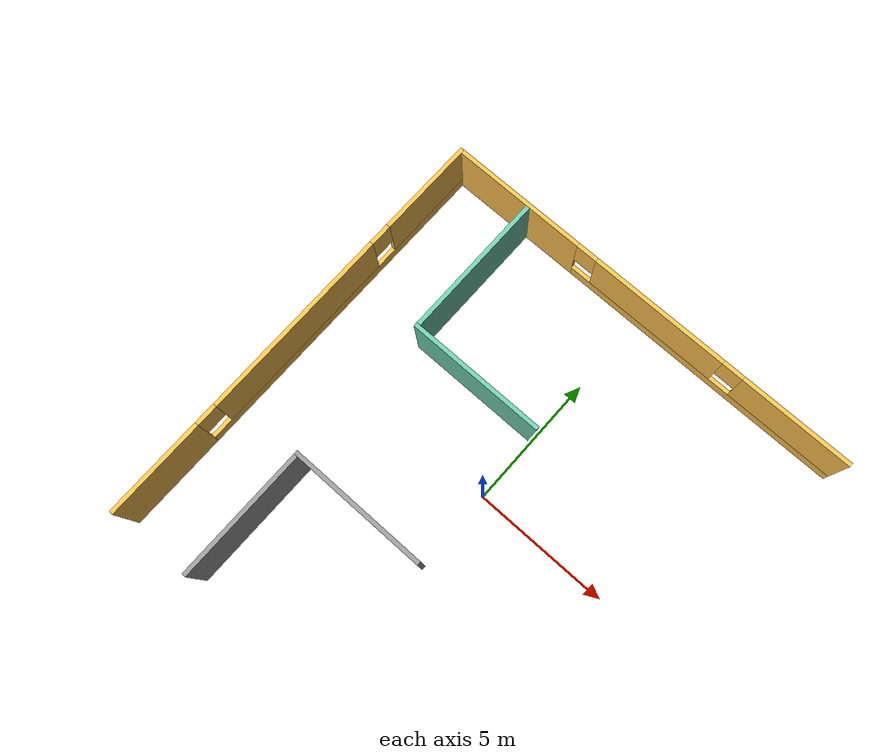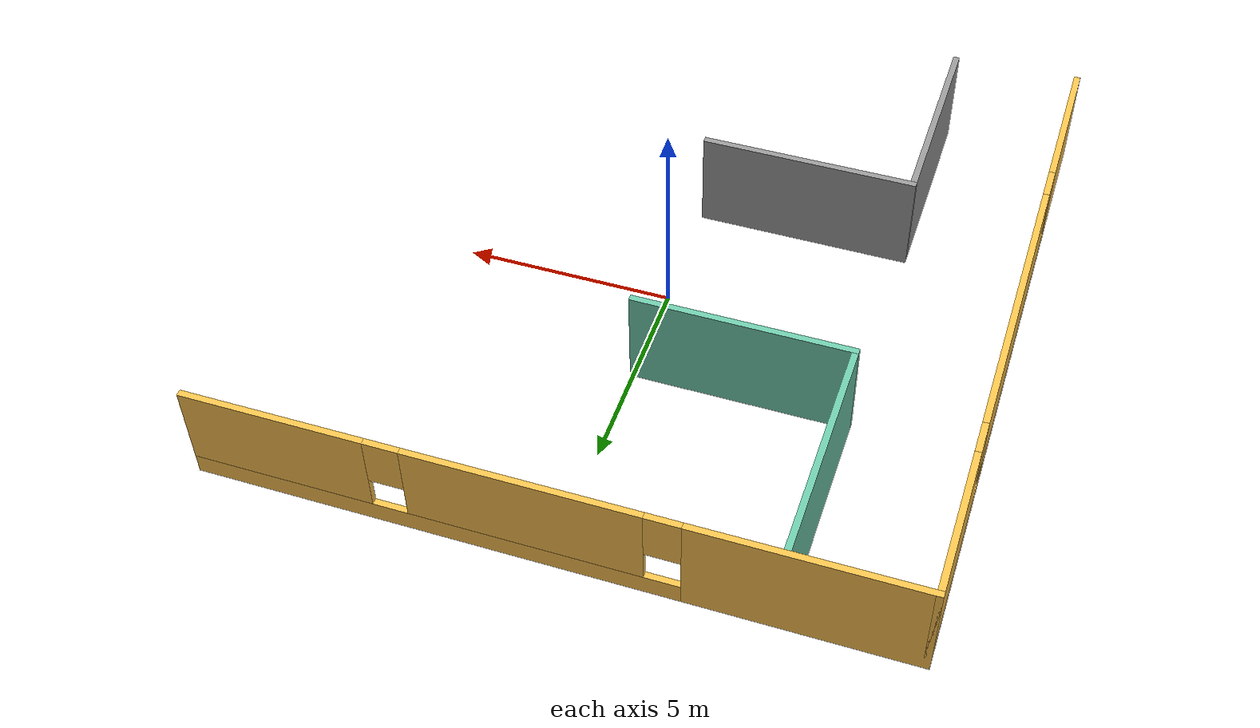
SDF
<sdf version="1.7">
 <model name="basic_office">
  <link name="Wall_15">
   <pose>0 8 0 0 -0 0</pose>
   <visual name="Wall_15_Visual_2">
    <pose>0.5 0 1.5 0 -0 0</pose>
    <geometry><box><size>5.2 0.15 2</size></box></geometry>
    <material>
     <script><uri>file://media/materials/scripts/gazebo.material</uri><name>Gazebo/Grey</name></script>
     <ambient>1 0.764706 0.305882 1</ambient>
     <shader type="pixel"/>
    </material>
    <meta><layer>0</layer></meta>
   </visual>
   <visual name="Wall_15_Visual_4">
    <pose>-2.5 0 1.9 0 -0 0</pose>
    <geometry><box><size>0.8 0.15 1.2</size></box></geometry>
    <material>
     <script><uri>file://media/materials/scripts/gazebo.material</uri><name>Gazebo/Grey</name></script>
     <ambient>1 0.764706 0.305882 1</ambient>
     <shader type="pixel"/>
    </material>
    <meta><layer>0</layer></meta>
   </visual>
   <visual name="Wall_15_Visual_5">
    <pose>3.5 0 1.9 0 -0 0</pose>
    <geometry><box><size>0.8 0.15 1.2</size></box></geometry>
    <material>
     <script><uri>file://media/materials/scripts/gazebo.material</uri><name>Gazebo/Grey</name></script>
     <ambient>1 0.764706 0.305882 1</ambient>
     <shader type="pixel"/>
    </material>
    <meta><layer>0</layer></meta>
   </visual>
   <visual name="Wall_15_Visual_3">
    <pose>5.9875 0 1.5 0 -0 0</pose>
    <geometry><box><size>4.175 0.15 2</size></box></geometry>
    <material>
     <script><uri>file://media/materials/scripts/gazebo.material</uri><name>Gazebo/Grey</name></script>
     <ambient>1 0.764706 0.305882 1</ambient>
     <shader type="pixel"/>
    </material>
    <meta><layer>0</layer></meta>
   </visual>
   <visual name="Wall_15_Visual_1">
    <pose>2.5875 0 0.25 0 -0 0</pose>
    <geometry><box><size>10.975 0.15 0.5</size></box></geometry>
    <material>
     <script><uri>file://media/materials/scripts/gazebo.material</uri><name>Gazebo/Grey</name></script>
     <ambient>1 0.764706 0.305882 1</ambient>
     <shader type="pixel"/>
    </material>
    <meta><layer>0</layer></meta>
   </visual>
   <visual name="Wall_15_Visual_0">
    <pose>-5.4875 0 1.25 0 -0 0</pose>
    <geometry><box><size>5.175 0.15 2.5</size></box></geometry>
    <material>
     <script><uri>file://media/materials/scripts/gazebo.material</uri><name>Gazebo/Grey</name></script>
     <ambient>1 0.764706 0.305882 1</ambient>
     <shader type="pixel"/>
    </material>
    <meta><layer>0</layer></meta>
   </visual>
   <collision name="Wall_15_Collision_0">
    <pose>-5.4875 0 1.25 0 -0 0</pose>
    <geometry><box><size>5.175 0.15 2.5</size></box></geometry>
    <surface>
     <friction>
      <ode><mu>1</mu><mu2>1</mu2><fdir1>0 0 0</fdir1><slip1>0</slip1><slip2>0</slip2></ode>
      <torsional>
       <coefficient>1</coefficient>
       <patch_radius>0</patch_radius>
       <surface_radius>0</surface_radius>
       <use_patch_radius>1</use_patch_radius>
       <ode><slip>0</slip></ode>
      </torsional>
     </friction>
     <bounce><restitution_coefficient>0</restitution_coefficient><threshold>1e+06</threshold></bounce>
     <contact>
      <collide_without_contact>0</collide_without_contact>
      <collide_without_contact_bitmask>1</collide_without_contact_bitmask>
      <collide_bitmask>1</collide_bitmask>
      <ode>
       <soft_cfm>0</soft_cfm>
       <soft_erp>0.2</soft_erp>
       <kp>1e+13</kp>
       <kd>1</kd>
       <max_vel>0.01</max_vel>
       <min_depth>0</min_depth>
      </ode>
      <bullet>
       <split_impulse>1</split_impulse>
       <split_impulse_penetration_threshold>-0.01</split_impulse_penetration_threshold>
       <soft_cfm>0</soft_cfm>
       <soft_erp>0.2</soft_erp>
       <kp>1e+13</kp>
       <kd>1</kd>
      </bullet>
     </contact>
    </surface>
   </collision>
   <collision name="Wall_15_Collision_5">
    <pose>3.5 0 1.9 0 -0 0</pose>
    <geometry><box><size>0.8 0.15 1.2</size></box></geometry>
    <surface>
     <friction>
      <ode><mu>1</mu><mu2>1</mu2><fdir1>0 0 0</fdir1><slip1>0</slip1><slip2>0</slip2></ode>
      <torsional>
       <coefficient>1</coefficient>
       <patch_radius>0</patch_radius>
       <surface_radius>0</surface_radius>
       <use_patch_radius>1</use_patch_radius>
       <ode><slip>0</slip></ode>
      </torsional>
     </friction>
     <bounce><restitution_coefficient>0</restitution_coefficient><threshold>1e+06</threshold></bounce>
     <contact>
      <collide_without_contact>0</collide_without_contact>
      <collide_without_contact_bitmask>1</collide_without_contact_bitmask>
      <collide_bitmask>1</collide_bitmask>
      <ode>
       <soft_cfm>0</soft_cfm>
       <soft_erp>0.2</soft_erp>
       <kp>1e+13</kp>
       <kd>1</kd>
       <max_vel>0.01</max_vel>
       <min_depth>0</min_depth>
      </ode>
      <bullet>
       <split_impulse>1</split_impulse>
       <split_impulse_penetration_threshold>-0.01</split_impulse_penetration_threshold>
       <soft_cfm>0</soft_cfm>
       <soft_erp>0.2</soft_erp>
       <kp>1e+13</kp>
       <kd>1</kd>
      </bullet>
     </contact>
    </surface>
   </collision>
   <collision name="Wall_15_Collision_2">
    <pose>0.5 0 1.5 0 -0 0</pose>
    <geometry><box><size>5.2 0.15 2</size></box></geometry>
    <surface>
     <friction>
      <ode><mu>1</mu><mu2>1</mu2><fdir1>0 0 0</fdir1><slip1>0</slip1><slip2>0</slip2></ode>
      <torsional>
       <coefficient>1</coefficient>
       <patch_radius>0</patch_radius>
       <surface_radius>0</surface_radius>
       <use_patch_radius>1</use_patch_radius>
       <ode><slip>0</slip></ode>
      </torsional>
     </friction>
     <bounce><restitution_coefficient>0</restitution_coefficient><threshold>1e+06</threshold></bounce>
     <contact>
      <collide_without_contact>0</collide_without_contact>
      <collide_without_contact_bitmask>1</collide_without_contact_bitmask>
      <collide_bitmask>1</collide_bitmask>
      <ode>
       <soft_cfm>0</soft_cfm>
       <soft_erp>0.2</soft_erp>
       <kp>1e+13</kp>
       <kd>1</kd>
       <max_vel>0.01</max_vel>
       <min_depth>0</min_depth>
      </ode>
      <bullet>
       <split_impulse>1</split_impulse>
       <split_impulse_penetration_threshold>-0.01</split_impulse_penetration_threshold>
       <soft_cfm>0</soft_cfm>
       <soft_erp>0.2</soft_erp>
       <kp>1e+13</kp>
       <kd>1</kd>
      </bullet>
     </contact>
    </surface>
   </collision>
   <collision name="Wall_15_Collision_3">
    <pose>5.9875 0 1.5 0 -0 0</pose>
    <geometry><box><size>4.175 0.15 2</size></box></geometry>
    <surface>
     <friction>
      <ode><mu>1</mu><mu2>1</mu2><fdir1>0 0 0</fdir1><slip1>0</slip1><slip2>0</slip2></ode>
      <torsional>
       <coefficient>1</coefficient>
       <patch_radius>0</patch_radius>
       <surface_radius>0</surface_radius>
       <use_patch_radius>1</use_patch_radius>
       <ode><slip>0</slip></ode>
      </torsional>
     </friction>
     <bounce><restitution_coefficient>0</restitution_coefficient><threshold>1e+06</threshold></bounce>
     <contact>
      <collide_without_contact>0</collide_without_contact>
      <collide_without_contact_bitmask>1</collide_without_contact_bitmask>
      <collide_bitmask>1</collide_bitmask>
      <ode>
       <soft_cfm>0</soft_cfm>
       <soft_erp>0.2</soft_erp>
       <kp>1e+13</kp>
       <kd>1</kd>
       <max_vel>0.01</max_vel>
       <min_depth>0</min_depth>
      </ode>
      <bullet>
       <split_impulse>1</split_impulse>
       <split_impulse_penetration_threshold>-0.01</split_impulse_penetration_threshold>
       <soft_cfm>0</soft_cfm>
       <soft_erp>0.2</soft_erp>
       <kp>1e+13</kp>
       <kd>1</kd>
      </bullet>
     </contact>
    </surface>
   </collision>
   <collision name="Wall_15_Collision_1">
    <pose>2.5875 0 0.25 0 -0 0</pose>
    <geometry><box><size>10.975 0.15 0.5</size></box></geometry>
    <surface>
     <friction>
      <ode><mu>1</mu><mu2>1</mu2><fdir1>0 0 0</fdir1><slip1>0</slip1><slip2>0</slip2></ode>
      <torsional>
       <coefficient>1</coefficient>
       <patch_radius>0</patch_radius>
       <surface_radius>0</surface_radius>
       <use_patch_radius>1</use_patch_radius>
       <ode><slip>0</slip></ode>
      </torsional>
     </friction>
     <bounce><restitution_coefficient>0</restitution_coefficient><threshold>1e+06</threshold></bounce>
     <contact>
      <collide_without_contact>0</collide_without_contact>
      <collide_without_contact_bitmask>1</collide_without_contact_bitmask>
      <collide_bitmask>1</collide_bitmask>
      <ode>
       <soft_cfm>0</soft_cfm>
       <soft_erp>0.2</soft_erp>
       <kp>1e+13</kp>
       <kd>1</kd>
       <max_vel>0.01</max_vel>
       <min_depth>0</min_depth>
      </ode>
      <bullet>
       <split_impulse>1</split_impulse>
       <split_impulse_penetration_threshold>-0.01</split_impulse_penetration_threshold>
       <soft_cfm>0</soft_cfm>
       <soft_erp>0.2</soft_erp>
       <kp>1e+13</kp>
       <kd>1</kd>
      </bullet>
     </contact>
    </surface>
   </collision>
   <collision name="Wall_15_Collision_4">
    <pose>-2.5 0 1.9 0 -0 0</pose>
    <geometry><box><size>0.8 0.15 1.2</size></box></geometry>
    <surface>
     <friction>
      <ode><mu>1</mu><mu2>1</mu2><fdir1>0 0 0</fdir1><slip1>0</slip1><slip2>0</slip2></ode>
      <torsional>
       <coefficient>1</coefficient>
       <patch_radius>0</patch_radius>
       <surface_radius>0</surface_radius>
       <use_patch_radius>1</use_patch_radius>
       <ode><slip>0</slip></ode>
      </torsional>
     </friction>
     <bounce><restitution_coefficient>0</restitution_coefficient><threshold>1e+06</threshold></bounce>
     <contact>
      <collide_without_contact>0</collide_without_contact>
      <collide_without_contact_bitmask>1</collide_without_contact_bitmask>
      <collide_bitmask>1</collide_bitmask>
      <ode>
       <soft_cfm>0</soft_cfm>
       <soft_erp>0.2</soft_erp>
       <kp>1e+13</kp>
       <kd>1</kd>
       <max_vel>0.01</max_vel>
       <min_depth>0</min_depth>
      </ode>
      <bullet>
       <split_impulse>1</split_impulse>
       <split_impulse_penetration_threshold>-0.01</split_impulse_penetration_threshold>
       <soft_cfm>0</soft_cfm>
       <soft_erp>0.2</soft_erp>
       <kp>1e+13</kp>
       <kd>1</kd>
      </bullet>
     </contact>
    </surface>
   </collision>
  </link>
  <link name="Wall_17">
   <pose>-8 0 0 0 -0 1.5708</pose>
   <inertial>
    <mass>1</mass>
    <inertia><ixx>1</ixx><ixy>0</ixy><ixz>0</ixz><iyy>1</iyy><iyz>0</iyz><izz>1</izz></inertia>
   </inertial>
   <visual name="Wall_17_Visual_1">
    <pose>1.8375 0 0.25 0 -0 0</pose>
    <geometry><box><size>12.475 0.15 0.5</size></box></geometry>
    <material>
     <script><uri>file://media/materials/scripts/gazebo.material</uri><name>Gazebo/Grey</name></script>
     <ambient>1 0.765 0.306 1</ambient>
     <shader type="pixel"><normal_map>__default__</normal_map></shader>
     <diffuse>0.7 0.7 0.7 1</diffuse>
     <specular>0.01 0.01 0.01 1</specular>
     <emissive>0 0 0 1</emissive>
    </material>
    <meta><layer>0</layer></meta>
   </visual>
   <visual name="Wall_17_Visual_2">
    <pose>0 0 1.5 0 -0 0</pose>
    <geometry><box><size>7.2 0.15 2</size></box></geometry>
    <material>
     <script><uri>file://media/materials/scripts/gazebo.material</uri><name>Gazebo/Grey</name></script>
     <ambient>1 0.765 0.306 1</ambient>
     <shader type="pixel"><normal_map>__default__</normal_map></shader>
     <diffuse>0.7 0.7 0.7 1</diffuse>
     <specular>0.01 0.01 0.01 1</specular>
     <emissive>0 0 0 1</emissive>
    </material>
    <meta><layer>0</layer></meta>
   </visual>
   <visual name="Wall_17_Visual_0">
    <pose>-6.2375 0 1.25 0 -0 0</pose>
    <geometry><box><size>3.675 0.15 2.5</size></box></geometry>
    <material>
     <script><uri>file://media/materials/scripts/gazebo.material</uri><name>Gazebo/Grey</name></script>
     <ambient>1 0.765 0.306 1</ambient>
     <shader type="pixel"><normal_map>__default__</normal_map></shader>
     <diffuse>0.7 0.7 0.7 1</diffuse>
     <specular>0.01 0.01 0.01 1</specular>
     <emissive>0 0 0 1</emissive>
    </material>
    <meta><layer>0</layer></meta>
   </visual>
   <visual name="Wall_17_Visual_5">
    <pose>4 0 1.9 0 -0 0</pose>
    <geometry><box><size>0.8 0.15 1.2</size></box></geometry>
    <material>
     <script><uri>file://media/materials/scripts/gazebo.material</uri><name>Gazebo/Grey</name></script>
     <ambient>1 0.765 0.306 1</ambient>
     <shader type="pixel"><normal_map>__default__</normal_map></shader>
     <diffuse>0.7 0.7 0.7 1</diffuse>
     <specular>0.01 0.01 0.01 1</specular>
     <emissive>0 0 0 1</emissive>
    </material>
    <meta><layer>0</layer></meta>
   </visual>
   <visual name="Wall_17_Visual_3">
    <pose>6.2375 0 1.5 0 -0 0</pose>
    <geometry><box><size>3.675 0.15 2</size></box></geometry>
    <material>
     <script><uri>file://media/materials/scripts/gazebo.material</uri><name>Gazebo/Grey</name></script>
     <ambient>1 0.765 0.306 1</ambient>
     <shader type="pixel"><normal_map>__default__</normal_map></shader>
     <diffuse>0.7 0.7 0.7 1</diffuse>
     <specular>0.01 0.01 0.01 1</specular>
     <emissive>0 0 0 1</emissive>
    </material>
    <meta><layer>0</layer></meta>
   </visual>
   <visual name="Wall_17_Visual_4">
    <pose>-4 0 1.9 0 -0 0</pose>
    <geometry><box><size>0.8 0.15 1.2</size></box></geometry>
    <material>
     <script><uri>file://media/materials/scripts/gazebo.material</uri><name>Gazebo/Grey</name></script>
     <ambient>1 0.765 0.306 1</ambient>
     <shader type="pixel"><normal_map>__default__</normal_map></shader>
     <diffuse>0.7 0.7 0.7 1</diffuse>
     <specular>0.01 0.01 0.01 1</specular>
     <emissive>0 0 0 1</emissive>
    </material>
    <meta><layer>0</layer></meta>
   </visual>
   <collision name="Wall_17_Collision_3">
    <pose>6.2375 0 1.5 0 -0 0</pose>
    <geometry><box><size>3.675 0.15 2</size></box></geometry>
    <surface>
     <friction>
      <ode><mu>1</mu><mu2>1</mu2><fdir1>0 0 0</fdir1><slip1>0</slip1><slip2>0</slip2></ode>
      <torsional>
       <coefficient>1</coefficient>
       <patch_radius>0</patch_radius>
       <surface_radius>0</surface_radius>
       <use_patch_radius>1</use_patch_radius>
       <ode><slip>0</slip></ode>
      </torsional>
     </friction>
     <bounce><restitution_coefficient>0</restitution_coefficient><threshold>1e+06</threshold></bounce>
     <contact>
      <collide_without_contact>0</collide_without_contact>
      <collide_without_contact_bitmask>1</collide_without_contact_bitmask>
      <collide_bitmask>1</collide_bitmask>
      <ode>
       <soft_cfm>0</soft_cfm>
       <soft_erp>0.2</soft_erp>
       <kp>1e+13</kp>
       <kd>1</kd>
       <max_vel>0.01</max_vel>
       <min_depth>0</min_depth>
      </ode>
      <bullet>
       <split_impulse>1</split_impulse>
       <split_impulse_penetration_threshold>-0.01</split_impulse_penetration_threshold>
       <soft_cfm>0</soft_cfm>
       <soft_erp>0.2</soft_erp>
       <kp>1e+13</kp>
       <kd>1</kd>
      </bullet>
     </contact>
    </surface>
   </collision>
   <collision name="Wall_17_Collision_5">
    <pose>4 0 1.9 0 -0 0</pose>
    <geometry><box><size>0.8 0.15 1.2</size></box></geometry>
    <surface>
     <friction>
      <ode><mu>1</mu><mu2>1</mu2><fdir1>0 0 0</fdir1><slip1>0</slip1><slip2>0</slip2></ode>
      <torsional>
       <coefficient>1</coefficient>
       <patch_radius>0</patch_radius>
       <surface_radius>0</surface_radius>
       <use_patch_radius>1</use_patch_radius>
       <ode><slip>0</slip></ode>
      </torsional>
     </friction>
     <bounce><restitution_coefficient>0</restitution_coefficient><threshold>1e+06</threshold></bounce>
     <contact>
      <collide_without_contact>0</collide_without_contact>
      <collide_without_contact_bitmask>1</collide_without_contact_bitmask>
      <collide_bitmask>1</collide_bitmask>
      <ode>
       <soft_cfm>0</soft_cfm>
       <soft_erp>0.2</soft_erp>
       <kp>1e+13</kp>
       <kd>1</kd>
       <max_vel>0.01</max_vel>
       <min_depth>0</min_depth>
      </ode>
      <bullet>
       <split_impulse>1</split_impulse>
       <split_impulse_penetration_threshold>-0.01</split_impulse_penetration_threshold>
       <soft_cfm>0</soft_cfm>
       <soft_erp>0.2</soft_erp>
       <kp>1e+13</kp>
       <kd>1</kd>
      </bullet>
     </contact>
    </surface>
   </collision>
   <collision name="Wall_17_Collision_4">
    <pose>-4 0 1.9 0 -0 0</pose>
    <geometry><box><size>0.8 0.15 1.2</size></box></geometry>
    <surface>
     <friction>
      <ode><mu>1</mu><mu2>1</mu2><fdir1>0 0 0</fdir1><slip1>0</slip1><slip2>0</slip2></ode>
      <torsional>
       <coefficient>1</coefficient>
       <patch_radius>0</patch_radius>
       <surface_radius>0</surface_radius>
       <use_patch_radius>1</use_patch_radius>
       <ode><slip>0</slip></ode>
      </torsional>
     </friction>
     <bounce><restitution_coefficient>0</restitution_coefficient><threshold>1e+06</threshold></bounce>
     <contact>
      <collide_without_contact>0</collide_without_contact>
      <collide_without_contact_bitmask>1</collide_without_contact_bitmask>
      <collide_bitmask>1</collide_bitmask>
      <ode>
       <soft_cfm>0</soft_cfm>
       <soft_erp>0.2</soft_erp>
       <kp>1e+13</kp>
       <kd>1</kd>
       <max_vel>0.01</max_vel>
       <min_depth>0</min_depth>
      </ode>
      <bullet>
       <split_impulse>1</split_impulse>
       <split_impulse_penetration_threshold>-0.01</split_impulse_penetration_threshold>
       <soft_cfm>0</soft_cfm>
       <soft_erp>0.2</soft_erp>
       <kp>1e+13</kp>
       <kd>1</kd>
      </bullet>
     </contact>
    </surface>
   </collision>
   <collision name="Wall_17_Collision_0">
    <pose>-6.2375 0 1.25 0 -0 0</pose>
    <geometry><box><size>3.675 0.15 2.5</size></box></geometry>
    <surface>
     <friction>
      <ode><mu>1</mu><mu2>1</mu2><fdir1>0 0 0</fdir1><slip1>0</slip1><slip2>0</slip2></ode>
      <torsional>
       <coefficient>1</coefficient>
       <patch_radius>0</patch_radius>
       <surface_radius>0</surface_radius>
       <use_patch_radius>1</use_patch_radius>
       <ode><slip>0</slip></ode>
      </torsional>
     </friction>
     <bounce><restitution_coefficient>0</restitution_coefficient><threshold>1e+06</threshold></bounce>
     <contact>
      <collide_without_contact>0</collide_without_contact>
      <collide_without_contact_bitmask>1</collide_without_contact_bitmask>
      <collide_bitmask>1</collide_bitmask>
      <ode>
       <soft_cfm>0</soft_cfm>
       <soft_erp>0.2</soft_erp>
       <kp>1e+13</kp>
       <kd>1</kd>
       <max_vel>0.01</max_vel>
       <min_depth>0</min_depth>
      </ode>
      <bullet>
       <split_impulse>1</split_impulse>
       <split_impulse_penetration_threshold>-0.01</split_impulse_penetration_threshold>
       <soft_cfm>0</soft_cfm>
       <soft_erp>0.2</soft_erp>
       <kp>1e+13</kp>
       <kd>1</kd>
      </bullet>
     </contact>
    </surface>
   </collision>
   <collision name="Wall_17_Collision_1">
    <pose>1.8375 0 0.25 0 -0 0</pose>
    <geometry><box><size>12.475 0.15 0.5</size></box></geometry>
    <surface>
     <friction>
      <ode><mu>1</mu><mu2>1</mu2><fdir1>0 0 0</fdir1><slip1>0</slip1><slip2>0</slip2></ode>
      <torsional>
       <coefficient>1</coefficient>
       <patch_radius>0</patch_radius>
       <surface_radius>0</surface_radius>
       <use_patch_radius>1</use_patch_radius>
       <ode><slip>0</slip></ode>
      </torsional>
     </friction>
     <bounce><restitution_coefficient>0</restitution_coefficient><threshold>1e+06</threshold></bounce>
     <contact>
      <collide_without_contact>0</collide_without_contact>
      <collide_without_contact_bitmask>1</collide_without_contact_bitmask>
      <collide_bitmask>1</collide_bitmask>
      <ode>
       <soft_cfm>0</soft_cfm>
       <soft_erp>0.2</soft_erp>
       <kp>1e+13</kp>
       <kd>1</kd>
       <max_vel>0.01</max_vel>
       <min_depth>0</min_depth>
      </ode>
      <bullet>
       <split_impulse>1</split_impulse>
       <split_impulse_penetration_threshold>-0.01</split_impulse_penetration_threshold>
       <soft_cfm>0</soft_cfm>
       <soft_erp>0.2</soft_erp>
       <kp>1e+13</kp>
       <kd>1</kd>
      </bullet>
     </contact>
    </surface>
   </collision>
   <collision name="Wall_17_Collision_2">
    <pose>0 0 1.5 0 -0 0</pose>
    <geometry><box><size>7.2 0.15 2</size></box></geometry>
    <surface>
     <friction>
      <ode><mu>1</mu><mu2>1</mu2><fdir1>0 0 0</fdir1><slip1>0</slip1><slip2>0</slip2></ode>
      <torsional>
       <coefficient>1</coefficient>
       <patch_radius>0</patch_radius>
       <surface_radius>0</surface_radius>
       <use_patch_radius>1</use_patch_radius>
       <ode><slip>0</slip></ode>
      </torsional>
     </friction>
     <bounce><restitution_coefficient>0</restitution_coefficient><threshold>1e+06</threshold></bounce>
     <contact>
      <collide_without_contact>0</collide_without_contact>
      <collide_without_contact_bitmask>1</collide_without_contact_bitmask>
      <collide_bitmask>1</collide_bitmask>
      <ode>
       <soft_cfm>0</soft_cfm>
       <soft_erp>0.2</soft_erp>
       <kp>1e+13</kp>
       <kd>1</kd>
       <max_vel>0.01</max_vel>
       <min_depth>0</min_depth>
      </ode>
      <bullet>
       <split_impulse>1</split_impulse>
       <split_impulse_penetration_threshold>-0.01</split_impulse_penetration_threshold>
       <soft_cfm>0</soft_cfm>
       <soft_erp>0.2</soft_erp>
       <kp>1e+13</kp>
       <kd>1</kd>
      </bullet>
     </contact>
    </surface>
   </collision>
  </link>
  <link name="Wall_22">
   <pose>-5 5.25 0 0 0 -1.5708</pose>
   <inertial>
    <mass>1</mass>
    <inertia><ixx>1</ixx><ixy>0</ixy><ixz>0</ixz><iyy>1</iyy><iyz>0</iyz><izz>1</izz></inertia>
   </inertial>
   <visual name="Wall_22_Visual">
    <pose>0 0 1.25 0 -0 0</pose>
    <geometry><box><size>5.35 0.15 2.5</size></box></geometry>
    <material>
     <script><uri>file://media/materials/scripts/gazebo.material</uri><name>Gazebo/Grey</name></script>
     <ambient>0.435 0.796 0.675 1</ambient>
     <shader type="pixel"><normal_map>__default__</normal_map></shader>
     <diffuse>0.7 0.7 0.7 1</diffuse>
     <specular>0.01 0.01 0.01 1</specular>
     <emissive>0 0 0 1</emissive>
    </material>
    <meta><layer>0</layer></meta>
   </visual>
   <collision name="Wall_22_Collision">
    <pose>0 0 1.25 0 -0 0</pose>
    <geometry><box><size>5.35 0.15 2.5</size></box></geometry>
    <surface>
     <friction>
      <ode><mu>1</mu><mu2>1</mu2><fdir1>0 0 0</fdir1><slip1>0</slip1><slip2>0</slip2></ode>
      <torsional>
       <coefficient>1</coefficient>
       <patch_radius>0</patch_radius>
       <surface_radius>0</surface_radius>
       <use_patch_radius>1</use_patch_radius>
       <ode><slip>0</slip></ode>
      </torsional>
     </friction>
     <bounce><restitution_coefficient>0</restitution_coefficient><threshold>1e+06</threshold></bounce>
     <contact>
      <collide_without_contact>0</collide_without_contact>
      <collide_without_contact_bitmask>1</collide_without_contact_bitmask>
      <collide_bitmask>1</collide_bitmask>
      <ode>
       <soft_cfm>0</soft_cfm>
       <soft_erp>0.2</soft_erp>
       <kp>1e+13</kp>
       <kd>1</kd>
       <max_vel>0.01</max_vel>
       <min_depth>0</min_depth>
      </ode>
      <bullet>
       <split_impulse>1</split_impulse>
       <split_impulse_penetration_threshold>-0.01</split_impulse_penetration_threshold>
       <soft_cfm>0</soft_cfm>
       <soft_erp>0.2</soft_erp>
       <kp>1e+13</kp>
       <kd>1</kd>
      </bullet>
     </contact>
    </surface>
   </collision>
  </link>
  <link name="Wall_34">
   <pose>-2.5 2.5 0 0 -0 0</pose>
   <visual name="Wall_34_Visual">
    <pose>0 0 1.25 0 -0 0</pose>
    <geometry><box><size>5.15 0.15 2.5</size></box></geometry>
    <material>
     <script><uri>file://media/materials/scripts/gazebo.material</uri><name>Gazebo/Grey</name></script>
     <ambient>0.435294 0.796078 0.67451 1</ambient>
     <shader type="pixel"/>
    </material>
    <meta><layer>0</layer></meta>
   </visual>
   <collision name="Wall_34_Collision">
    <pose>0 0 1.25 0 -0 0</pose>
    <geometry><box><size>5.15 0.15 2.5</size></box></geometry>
    <surface>
     <friction>
      <ode><mu>1</mu><mu2>1</mu2><fdir1>0 0 0</fdir1><slip1>0</slip1><slip2>0</slip2></ode>
      <torsional>
       <coefficient>1</coefficient>
       <patch_radius>0</patch_radius>
       <surface_radius>0</surface_radius>
       <use_patch_radius>1</use_patch_radius>
       <ode><slip>0</slip></ode>
      </torsional>
     </friction>
     <bounce><restitution_coefficient>0</restitution_coefficient><threshold>1e+06</threshold></bounce>
     <contact>
      <collide_without_contact>0</collide_without_contact>
      <collide_without_contact_bitmask>1</collide_without_contact_bitmask>
      <collide_bitmask>1</collide_bitmask>
      <ode>
       <soft_cfm>0</soft_cfm>
       <soft_erp>0.2</soft_erp>
       <kp>1e+13</kp>
       <kd>1</kd>
       <max_vel>0.01</max_vel>
       <min_depth>0</min_depth>
      </ode>
      <bullet>
       <split_impulse>1</split_impulse>
       <split_impulse_penetration_threshold>-0.01</split_impulse_penetration_threshold>
       <soft_cfm>0</soft_cfm>
       <soft_erp>0.2</soft_erp>
       <kp>1e+13</kp>
       <kd>1</kd>
      </bullet>
     </contact>
    </surface>
   </collision>
  </link>
  <link name="Wall_38">
   <pose>-2.5 -3 0 0 -0 3.14159</pose>
   <inertial>
    <mass>1</mass>
    <inertia><ixx>1</ixx><ixy>0</ixy><ixz>0</ixz><iyy>1</iyy><iyz>0</iyz><izz>1</izz></inertia>
   </inertial>
   <visual name="Wall_38_Visual">
    <pose>0 0 1.25 0 -0 0</pose>
    <geometry><box><size>5.15 0.15 2.5</size></box></geometry>
    <material>
     <script><uri>file://media/materials/scripts/gazebo.material</uri><name>Gazebo/Grey</name></script>
     <ambient>0.18 0.204 0.212 1</ambient>
     <shader type="pixel"><normal_map>__default__</normal_map></shader>
    </material>
    <meta><layer>0</layer></meta>
   </visual>
   <collision name="Wall_38_Collision">
    <pose>0 0 1.25 0 -0 0</pose>
    <geometry><box><size>5.15 0.15 2.5</size></box></geometry>
    <surface>
     <friction>
      <ode><mu>1</mu><mu2>1</mu2><fdir1>0 0 0</fdir1><slip1>0</slip1><slip2>0</slip2></ode>
      <torsional>
       <coefficient>1</coefficient>
       <patch_radius>0</patch_radius>
       <surface_radius>0</surface_radius>
       <use_patch_radius>1</use_patch_radius>
       <ode><slip>0</slip></ode>
      </torsional>
     </friction>
     <bounce><restitution_coefficient>0</restitution_coefficient><threshold>1e+06</threshold></bounce>
     <contact>
      <collide_without_contact>0</collide_without_contact>
      <collide_without_contact_bitmask>1</collide_without_contact_bitmask>
      <collide_bitmask>1</collide_bitmask>
      <ode>
       <soft_cfm>0</soft_cfm>
       <soft_erp>0.2</soft_erp>
       <kp>1e+13</kp>
       <kd>1</kd>
       <max_vel>0.01</max_vel>
       <min_depth>0</min_depth>
      </ode>
      <bullet>
       <split_impulse>1</split_impulse>
       <split_impulse_penetration_threshold>-0.01</split_impulse_penetration_threshold>
       <soft_cfm>0</soft_cfm>
       <soft_erp>0.2</soft_erp>
       <kp>1e+13</kp>
       <kd>1</kd>
      </bullet>
     </contact>
    </surface>
   </collision>
  </link>
  <link name="Wall_46">
   <pose>-5 -5.5 0 0 0 -1.5708</pose>
   <inertial>
    <mass>1</mass>
    <inertia><ixx>1</ixx><ixy>0</ixy><ixz>0</ixz><iyy>1</iyy><iyz>0</iyz><izz>1</izz></inertia>
   </inertial>
   <visual name="Wall_46_Visual">
    <pose>0 0 1.25 0 -0 0</pose>
    <geometry><box><size>4.85 0.15 2.5</size></box></geometry>
    <material>
     <script><uri>file://media/materials/scripts/gazebo.material</uri><name>Gazebo/Grey</name></script>
     <ambient>0.18 0.204 0.212 1</ambient>
     <shader type="pixel"><normal_map>__default__</normal_map></shader>
     <diffuse>0.7 0.7 0.7 1</diffuse>
     <specular>0.01 0.01 0.01 1</specular>
     <emissive>0 0 0 1</emissive>
    </material>
    <meta><layer>0</layer></meta>
   </visual>
   <collision name="Wall_46_Collision">
    <pose>0 0 1.25 0 -0 0</pose>
    <geometry><box><size>4.85 0.15 2.5</size></box></geometry>
    <surface>
     <friction>
      <ode><mu>1</mu><mu2>1</mu2><fdir1>0 0 0</fdir1><slip1>0</slip1><slip2>0</slip2></ode>
      <torsional>
       <coefficient>1</coefficient>
       <patch_radius>0</patch_radius>
       <surface_radius>0</surface_radius>
       <use_patch_radius>1</use_patch_radius>
       <ode><slip>0</slip></ode>
      </torsional>
     </friction>
     <bounce><restitution_coefficient>0</restitution_coefficient><threshold>1e+06</threshold></bounce>
     <contact>
      <collide_without_contact>0</collide_without_contact>
      <collide_without_contact_bitmask>1</collide_without_contact_bitmask>
      <collide_bitmask>1</collide_bitmask>
      <ode>
       <soft_cfm>0</soft_cfm>
       <soft_erp>0.2</soft_erp>
       <kp>1e+13</kp>
       <kd>1</kd>
       <max_vel>0.01</max_vel>
       <min_depth>0</min_depth>
      </ode>
      <bullet>
       <split_impulse>1</split_impulse>
       <split_impulse_penetration_threshold>-0.01</split_impulse_penetration_threshold>
       <soft_cfm>0</soft_cfm>
       <soft_erp>0.2</soft_erp>
       <kp>1e+13</kp>
       <kd>1</kd>
      </bullet>
     </contact>
    </surface>
   </collision>
  </link>
  <static>1</static>
 </model>
</sdf>
